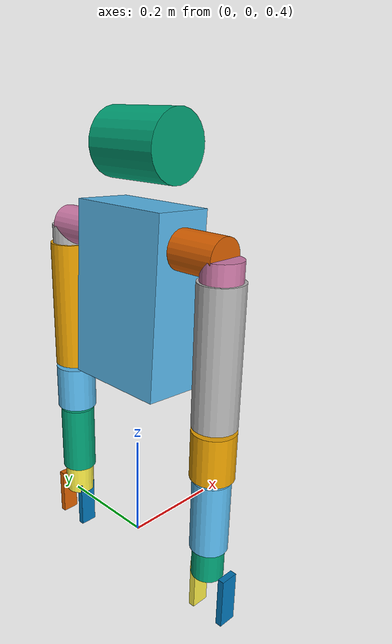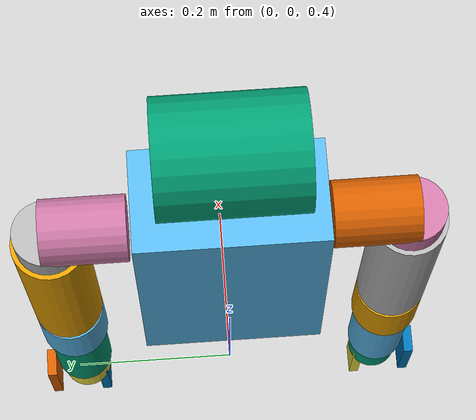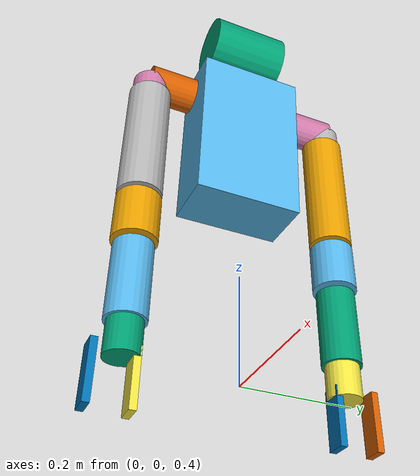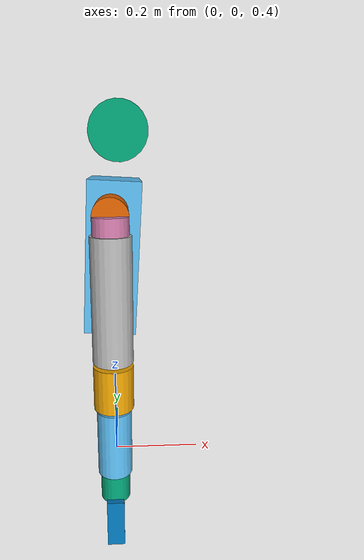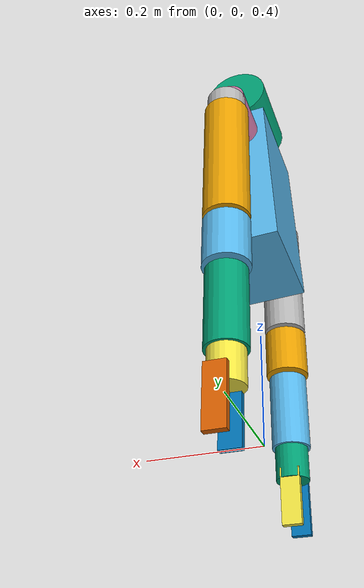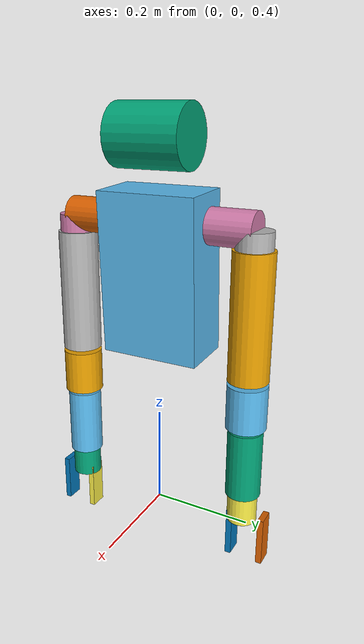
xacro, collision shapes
<?xml version="1.0"?>
<robot xmlns:xacro="http://www.ros.org/wiki/xacro" name="reachy">

<xacro:arg name="head" default="true"/>
<xacro:arg name="left_arm" default="true"/>
<xacro:arg name="right_arm" default="true"/>

<!-- Torso Link -->

<link name="pedestal"/>

<link name="torso">
    <inertial>
        <origin xyz="0.0 0.019 -0.009" rpy="0.0 0.0 0.0"/>
        <mass value="0.527"/>
        <inertia ixx="2.89598e-3" ixy="-1.16791e-6" ixz="-8.28749e-6" iyy="4.491e-3" iyz="2.343e-4" izz="3.995e-3"/>
    </inertial>
    <visual name="">
        <origin xyz="0.0 0.0 0.0" rpy="0.0 0.0 0.0"/>
        <geometry>
            <mesh filename="package://reachy_description/meshes/torso.dae"/>
        </geometry>
    </visual>
    <collision>
        <origin xyz="0 0 -0.1" rpy="0 0.05 0" />
        <geometry>
            <box size="0.11 0.2 0.32" />
        </geometry>
    </collision>
</link>

<!-- Head Links -->

<xacro:if value="$(arg head)">
<link name="head">
    <inertial>
        <origin xyz="-0.009 -0.002 0.059" rpy="0.0 0.0 0.0"/>
        <mass value="0.237"/>
        <inertia ixx="1.676e-3" ixy="3.068e-6" ixz="1.2449e-4" iyy="1.368e-3" iyz="3.360e-5" izz="8.425e-4"/>
    </inertial>
    <visual name="">
        <origin xyz="0.0 0.0 0.0" rpy="0.0 0.0 0.0"/>
        <geometry>
            <mesh filename="package://reachy_description/meshes/head.dae"/>
        </geometry>
    </visual>
    <collision>
        <origin xyz="-0.009 -0.002 0.059" rpy="1.57 0.0 0.0"/>
        <geometry>
            <cylinder length="0.15" radius="0.06" />
        </geometry>
    </collision>
</link>

<link name="l_antenna">
    <inertial>
        <origin xyz="-0.001 0.0 0.008" rpy="0.0 0.0 0.0"/>
        <mass value="0.004"/>
        <inertia ixx="1.794e-7" ixy="-1.240e-5" ixz="1.91701e-8" iyy="1.5e-7" iyz="3.169e-6" izz="1.933e-7"/>
    </inertial>
    <visual name="">
        <origin xyz="0.0 0.0 0.0" rpy="0.0 0.0 0.0"/>
        <geometry>
            <mesh filename="package://reachy_description/meshes/antenna.dae"/>
        </geometry>
    </visual>
    <collision>
        <origin xyz="0.1 0.0 0.1" rpy="0.0 0 0.0"/>
        <geometry>
            <cylinder length="0.0" radius="0.0" />
        </geometry>
    </collision>
</link>

<link name="r_antenna">
    <inertial>
        <origin xyz="-0.001 0.0 0.008" rpy="0.0 0.0 0.0"/>
        <mass value="0.004"/>
        <inertia ixx="1.794e-7" ixy="-1.240e-5" ixz="1.91701e-8" iyy="1.5e-7" iyz="3.169e-6" izz="1.933e-7"/>
    </inertial>
    <visual name="">
        <origin xyz="0.0 0.0 0.0" rpy="0.0 0.0 0.0"/>
        <geometry>
            <mesh filename="package://reachy_description/meshes/antenna.dae"/>
        </geometry>
    </visual>
    <collision>
        <origin xyz="0.0 0.0 0.0" rpy="0.0 0.0 0.0"/>
        <geometry>
            <cylinder length="0.0" radius="0.0" />
        </geometry>
    </collision>
</link>
</xacro:if>

<!-- Right Arm Links -->

<xacro:if value="$(arg right_arm)">
<link name="r_shoulder">
    <inertial>
        <origin xyz="-0.016 0.036 0.0" rpy="1.57 1.57 0.0"/>
        <mass value="0.053"/>
        <inertia ixx="3.308e-4" ixy="9.972e-8" ixz="-2.037e-9" iyy="4.650e-5" iyz="2.113e-6" izz="3.545e-5"/>
    </inertial>
    <visual name="">
        <origin xyz="0.0 0.04 0.0" rpy="1.57 1.57 0.0"/>
        <geometry>
            <mesh filename="package://reachy_description/meshes/shoulder.dae"/>
        </geometry>
    </visual>
    <collision>
        <origin xyz="0.0 0.04 0.0" rpy="1.57 1.57 0.0"/>
        <geometry>
            <cylinder length="0.09" radius="0.035" />
        </geometry>
    </collision>
</link>

<link name="r_shoulder_x">
    <inertial>
        <origin xyz="-0.0 0.0 -0.019" rpy="0.0 0.0 0.0"/>
        <mass value="0.158"/>
        <inertia ixx="6.887e+4" ixy="5.393e+0" ixz="-9.155e+2" iyy="7.895e+4" iyz="4.512e-1" izz="4.235e+4"/>
    </inertial>
    <visual name="">
        <origin xyz="0.0 0.0 0.0" rpy="0.0 0.0 0.0"/>
        <geometry>
            <mesh filename="package://reachy_description/meshes/shoulder_x.dae"/>
        </geometry>
    </visual>
    <collision>
        <origin xyz="0 0 -0.02" rpy="0.0 0.0 0.0"/>
        <geometry>
            <cylinder length="0.04" radius="0.035" />
        </geometry>
    </collision>
</link>

<link name="r_upper_arm">
    <inertial>
        <origin xyz="-0.004 0.0 -0.1426" rpy="0.0 0.0 0.0"/>
        <mass value="0.430"/>
        <inertia ixx="3.264e-3" ixy="-4.027e-8" ixz="1.395e-4" iyy="3.345e-3" iyz="1.885e-6" izz="2.616e-4"/>
    </inertial>
    <visual name="">
        <origin xyz="0.0 0.0 -0.0526" rpy="0.0 0.0 0.0"/>
        <geometry>
            <mesh filename="package://reachy_description/meshes/upper_arm.dae"/>
        </geometry>
    </visual>
    <collision>
        <origin xyz="0.0 0.0 -0.16" rpy="0.0 0.0 0.0"/>
        <geometry>
            <cylinder length="0.25" radius="0.04" />
        </geometry>
    </collision>
</link>

<link name="r_forearm">
    <inertial>
        <origin xyz="-0.008 0.0 -0.058" rpy="0.0 0.0 0.0"/>
        <mass value="0.162"/>
        <inertia ixx="2.532e-4" ixy="-2.999e-8" ixz="1.448e-5" iyy="2.538e-4" iyz="-4.323e-8" izz="1.234e-4"/>
    </inertial>
    <visual name="">
        <origin xyz="0.0 0.0 0.0" rpy="0.0 0.0 0.0"/>
        <geometry>
            <mesh filename="package://reachy_description/meshes/forearm.dae"/>
        </geometry>
    </visual>
    <collision>
        <origin xyz="0.0 0.0 -0.058" rpy="0.0 0.0 0.0"/>
        <geometry>
            <cylinder length="0.09" radius="0.04" />
        </geometry>
    </collision>
</link>

<link name="r_wrist">
    <inertial>
        <origin xyz="0.0 0.0 -0.193" rpy="0.0 0.0 0.0"/>
        <mass value="0.197"/>
        <inertia ixx="6.157e-4" ixy="5.706e-8" ixz="-1.045e-5" iyy="6.280e-4" iyz="4.862e-7" izz="1.050e-4"/>
    </inertial>
    <visual name="">
        <origin xyz="0.0 0.0 -0.100" rpy="0.0 0.0 0.0"/>
        <geometry>
            <mesh filename="package://reachy_description/meshes/wrist.dae"/>
        </geometry>
    </visual>
    <collision>
        <origin xyz="0.0 0.0 -0.18" rpy="0.0 0.0 0.0"/>
        <geometry>
            <cylinder length="0.14" radius="0.035" />
        </geometry>
    </collision>
</link>

<link name="r_wrist2hand">
    <inertial>
        <origin xyz="0.0 0.0 0.014" rpy="0.0 0.0 0.0"/>
        <mass value="0.01"/>
        <inertia ixx="6.750e-6" ixy="3.732e-11" ixz="-1.581e-11" iyy="6.060e-6" iyz="-1.746e-12" izz="5.774e-6"/>
    </inertial>
    <visual name="">
        <origin xyz="0.0 0.0 0.0" rpy="0.0 0.0 0.0"/>
        <geometry>
            <mesh filename="package://reachy_description/meshes/wrist2hand.dae"/>
        </geometry>
    </visual>
    <collision>
        <origin xyz="0.0 0.0 -0.03" rpy="0.0 0.0 0.0"/>
        <geometry>
            <cylinder length="0.06" radius="0.03" />
        </geometry>
    </collision>
</link>

<link name="r_gripper_thumb">
    <inertial>
        <origin xyz="0.032 -0.008 0.0" rpy="0.0 1.57 0.0"/>
        <mass value="0.173"/>
        <inertia ixx="1.083e-4" ixy="-3.476e-5" ixz="1.331e-6" iyy="1.421e-4" iyz="6.730e-7" izz="2.112e-4"/>
    </inertial>
    <visual name="">
        <origin xyz="0.0 0.0 0.0" rpy="0.0 1.57 0.0"/>
        <geometry>
            <mesh filename="package://reachy_description/meshes/r_gripper_thumb.dae"/>
        </geometry>
    </visual>
    <collision>
        <origin xyz="0.0 0.02 -0.06" rpy="0.0 1.57 0.0"/>
        <geometry>
            <box size="0.1 0.012 0.035" />
        </geometry>
    </collision>
</link>

<link name="r_gripper_finger">
    <inertial>
        <origin xyz="-0.005 -0.043 -0.0" rpy="0.0 1.57 0.0"/>
        <mass value="0.035"/>
        <inertia ixx="9.166e-5" ixy="-6.559e-6" ixz="-3.952e-8" iyy="1.062e-5" iyz="5.276e-9" izz="8.704e-5"/>
    </inertial>
    <visual name="">
        <origin xyz="0.0 0.0 0.0" rpy="0.0 1.57 0.0"/>
        <geometry>
            <mesh filename="package://reachy_description/meshes/r_gripper_finger.dae"/>
        </geometry>
    </visual>
    <collision>
        <origin xyz="0.0 -0.01 -0.02" rpy="0.0 1.57 0.0"/>
        <geometry>
            <box size="0.1 0.012 0.035" />
        </geometry>
    </collision>
</link>

<link name="right_tip"/>
</xacro:if>

<!-- Left Arm Links -->

<xacro:if value="$(arg left_arm)">
<link name="l_shoulder">
    <inertial>
        <origin xyz="-0.016 0.044 0.0" rpy="-1.57 1.57 0.0"/>
        <mass value="0.053"/>
        <inertia ixx="3.308e-4" ixy="9.972e-8" ixz="-2.037e-9" iyy="4.650e-5" iyz="2.113e-6" izz="3.545e-5"/>
    </inertial>
    <visual name="">
        <origin xyz="0.0 -0.04 0.0" rpy="-1.57 1.57 0.0"/>
        <geometry>
            <mesh filename="package://reachy_description/meshes/shoulder.dae"/>
        </geometry>
    </visual>
    <collision>
        <origin xyz="0.0 -0.04 0.0" rpy="-1.57 1.57 0.0"/>
        <geometry>
            <cylinder length="0.09" radius="0.035" />
        </geometry>
    </collision>
</link>

<link name="l_shoulder_x">
    <inertial>
        <origin xyz="0.0 0.0 -0.019" rpy="0.0 0.0 0.0"/>
        <mass value="0.158"/>
        <inertia ixx="6.887e+4" ixy="5.393e+0" ixz="-9.155e+2" iyy="7.895e+4" iyz="4.512e-1" izz="4.235e+4"/>
    </inertial>
    <visual name="">
        <origin xyz="0.0 0.0 0.0" rpy="0.0 0.0 0.0"/>
        <geometry>
            <mesh filename="package://reachy_description/meshes/shoulder_x.dae"/>
        </geometry>
    </visual>
    <collision>
        <origin xyz="0 0 -0.02" rpy="0.0 0.0 0.0"/>
        <geometry>
            <cylinder length="0.04" radius="0.035" />
        </geometry>
    </collision>
</link>

<link name="l_upper_arm">
    <inertial>
        <origin xyz="-0.004 0.0 -0.1426" rpy="0.0 0.0 0.0"/>
        <mass value="0.430"/>
        <inertia ixx="3.264e-3" ixy="-4.027e-8" ixz="1.395e-4" iyy="3.345e-3" iyz="1.885e-6" izz="2.616e-4"/>
    </inertial>
    <visual name="">
        <origin xyz="0.0 0.0 -0.0526" rpy="0.0 0.0 0.0"/>
        <geometry>
            <mesh filename="package://reachy_description/meshes/upper_arm.dae"/>
        </geometry>
    </visual>
    <collision>
        <origin xyz="0.0 0.0 -0.16" rpy="0.0 0.0 0.0"/>
        <geometry>
            <cylinder length="0.25" radius="0.04" />
        </geometry>
    </collision>
</link>

<link name="l_forearm">
    <inertial>
        <origin xyz="-0.008 0.0 -0.058" rpy="0.0 0.0 0.0"/>
        <mass value="0.162"/>
        <inertia ixx="2.532e-4" ixy="-2.999e-8" ixz="1.448e-5" iyy="2.538e-4" iyz="-4.323e-8" izz="1.234e-4"/>
    </inertial>
    <visual name="">
        <origin xyz="0.0 0.0 0.0" rpy="0.0 0.0 0.0"/>
        <geometry>
            <mesh filename="package://reachy_description/meshes/forearm.dae"/>
        </geometry>
    </visual>
    <collision>
        <origin xyz="0.0 0.0 -0.058" rpy="0.0 0.0 0.0"/>
        <geometry>
            <cylinder length="0.09" radius="0.04" />
        </geometry>
    </collision>
</link>

<link name="l_wrist">
    <inertial>
        <origin xyz="0.0 0.0 -0.193" rpy="0.0 0.0 0.0"/>
        <mass value="0.197"/>
        <inertia ixx="6.157e-4" ixy="5.706e-8" ixz="-1.045e-5" iyy="6.280e-4" iyz="4.862e-7" izz="1.050e-4"/>
    </inertial>
    <visual name="">
        <origin xyz="0.0 0.0 -0.1" rpy="0.0 0.0 0.0"/>
        <geometry>
            <mesh filename="package://reachy_description/meshes/wrist.dae"/>
        </geometry>
    </visual>
    <collision>
        <origin xyz="0.0 0.0 -0.18" rpy="0.0 0.0 0.0"/>
        <geometry>
            <cylinder length="0.14" radius="0.035" />
        </geometry>
    </collision>
</link>

<link name="l_wrist2hand">
    <inertial>
        <origin xyz="0.0 0.0 0.014" rpy="0.0 0.0 0.0"/>
        <mass value="0.01"/>
        <inertia ixx="6.750e-6" ixy="3.732e-11" ixz="-1.581e-11" iyy="6.060e-6" iyz="-1.746e-12" izz="5.774e-6"/>
    </inertial>
    <visual name="">
        <origin xyz="0.0 0.0 0.0" rpy="0.0 0.0 0.0"/>
        <geometry>
            <mesh filename="package://reachy_description/meshes/wrist2hand.dae"/>
        </geometry>
    </visual>
    <collision>
        <origin xyz="0.0 0.0 -0.03" rpy="0.0 0.0 0.0"/>
        <geometry>
            <cylinder length="0.06" radius="0.03" />
        </geometry>
    </collision>
</link>

<link name="l_gripper_thumb">
    <inertial>
        <origin xyz="0.032 0.008 0.0" rpy="0.0 1.57 0.0"/>
        <mass value="0.173"/>
        <inertia ixx="1.088e+5" ixy="3.479e+4" ixz="1.357e+3" iyy="1.422e+5" iyz="-7.930e+2" izz="2.116e+5"/>
    </inertial>
    <visual name="">
        <origin xyz="0.0 0.0 0.0" rpy="0.0 1.57 0.0"/>
        <geometry>
            <mesh filename="package://reachy_description/meshes/l_gripper_thumb.dae"/>
        </geometry>
    </visual>
    <collision>
        <origin xyz="0.0 -0.02 -0.06" rpy="0.0 1.57 0.0"/>
        <geometry>
            <box size="0.1 0.012 0.035" />
        </geometry>
    </collision>
</link>

<link name="l_gripper_finger">
    <inertial>
        <origin xyz="0.005 -0.043 0.0" rpy="0.0 1.57 0.0"/>
        <mass value="0.035"/>
        <inertia ixx="9.165e-5" ixy="6.559e-6" ixz="3.609e-10" iyy="1.062e-5" iyz="4.666e-9" izz="8.705e-5"/>
    </inertial>
    <visual name="">
        <origin xyz="0.0 0.0 0.0" rpy="0.0 1.57 0.0"/>
        <geometry>
            <mesh filename="package://reachy_description/meshes/l_gripper_finger.dae"/>
        </geometry>
    </visual>
    <collision>
        <origin xyz="0.0 0.01 -0.02" rpy="0.0 1.57 0.0"/>
        <geometry>
            <box size="0.1 0.012 0.035" />
        </geometry>
    </collision>
</link>

<link name="left_tip"/>
</xacro:if>

<!-- Head and Torso joints -->

<joint name="pedestal" type="fixed">
    <origin xyz="0 0 1" rpy="0 0 0" />
    <parent link="pedestal" />
    <child link="torso" />
</joint>

<xacro:if value="$(arg head)">
<joint name="r_antenna" type="revolute">
    <origin xyz="-0.052 -0.057 0.086" rpy="-0.166 -1.054 1.11"/>
    <parent link="head"/>
    <child link="r_antenna"/>
    <axis xyz="0 0 1"/>
   <limit lower="-2.618" upper="2.618" effort="10." velocity="0.0"/>
</joint>

<joint name="l_antenna" type="revolute">
    <origin xyz="-0.052 0.057 0.086" rpy="0.166 -1.054 -1.11"/>
    <parent link="head"/>
    <child link="l_antenna"/>
    <axis xyz="0 0 1"/>
   <limit lower="-2.618" upper="2.618" effort="10." velocity="0.0"/>
</joint>
</xacro:if>

<!-- Right Arm joint -->

<xacro:if value="$(arg right_arm)">
<joint name="r_shoulder_pitch" type="revolute">
    <origin xyz="0.0 -0.19 0.0" rpy="0.0 0.0 0.0"/>
    <parent link="torso"/>
    <child link="r_shoulder"/>
    <axis xyz="0 1 0"/>
   <limit lower="-2.618" upper="1.57" effort="10." velocity="0.0"/>
</joint>

<joint name="r_shoulder_roll" type="revolute">
    <origin xyz="0 0 0" rpy="0.0 0.0 0.0"/>
    <parent link="r_shoulder"/>
    <child link="r_shoulder_x"/>
    <axis xyz="1 0 0"/>
   <limit lower="-3.14" upper="0.174" effort="10." velocity="0.0"/>
</joint>

<joint name="r_arm_yaw" type="revolute">
    <origin xyz="0 0 0" rpy="0.0 0.0 0.0"/>
    <parent link="r_shoulder_x"/>
    <child link="r_upper_arm"/>
    <axis xyz="0 0 1"/>
   <limit lower="-1.57" upper="1.57" effort="10." velocity="0.0"/>
</joint>

<joint name="r_elbow_pitch" type="revolute">
    <origin xyz="0 0 -0.28" rpy="0.0 0.0 0.0"/>
    <parent link="r_upper_arm"/>
    <child link="r_forearm"/>
    <axis xyz="0 1 0"/>
   <limit lower="-2.182" upper="0" effort="10." velocity="0.0"/>
</joint>

<joint name="r_forearm_yaw" type="revolute">
    <origin xyz="0 0 0" rpy="0.0 0.0 0.0"/>
    <parent link="r_forearm"/>
    <child link="r_wrist"/>
    <axis xyz="0 0 1"/>
   <limit lower="-1.745" upper="1.745" effort="10." velocity="0.0"/>
</joint>

<joint name="r_wrist_pitch" type="revolute">
    <origin xyz="0 0 -0.25" rpy="0.0 0.0 0.0"/>
    <parent link="r_wrist"/>
    <child link="r_wrist2hand"/>
    <axis xyz="0 1 0"/>
   <limit lower="-0.785" upper="0.785" effort="10." velocity="0.0"/>
</joint>

<joint name="r_wrist_roll" type="revolute">
    <origin xyz="0 0 -0.0325" rpy="0.0 0.0 0.0"/>
    <parent link="r_wrist2hand"/>
    <child link="r_gripper_thumb"/>
    <axis xyz="1 0 0"/>
   <limit lower="-0.785" upper="0.785" effort="10." velocity="0.0"/>
</joint>

<joint name="r_gripper" type="revolute">
    <origin xyz="0.0 -0.037 -0.03998" rpy="0.0 0.0 0.0"/>
    <parent link="r_gripper_thumb"/>
    <child link="r_gripper_finger"/>
    <axis xyz="1 0 0"/>
   <limit lower="-1.2" upper="0.35" effort="10." velocity="0.0"/>
</joint>

<joint name="r_tip" type="fixed">
    <origin xyz="0 -0.012 -0.085" rpy="0 0 0" />
    <parent link="r_gripper_thumb" />
    <child link="right_tip" />
</joint>
</xacro:if>

<!-- Left arm joints -->
<xacro:if value="$(arg left_arm)">
<joint name="l_shoulder_pitch" type="revolute">
    <origin xyz="0.0 0.19 0.0" rpy="0.0 0.0 0.0"/>
    <parent link="torso"/>
    <child link="l_shoulder"/>
    <axis xyz="0 1 0"/>
   <limit lower="-2.618" upper="1.57" effort="10." velocity="0.0"/>
</joint>

<joint name="l_shoulder_roll" type="revolute">
    <origin xyz="0 0 0" rpy="0.0 0.0 0.0"/>
    <parent link="l_shoulder"/>
    <child link="l_shoulder_x"/>
    <axis xyz="1 0 0"/>
   <limit lower="-0.174" upper="3.14" effort="10." velocity="0.0"/>
</joint>

<joint name="l_arm_yaw" type="revolute">
    <origin xyz="0 0 0" rpy="0.0 0.0 0.0"/>
    <parent link="l_shoulder_x"/>
    <child link="l_upper_arm"/>
    <axis xyz="0 0 1"/>
   <limit lower="-1.57" upper="1.57" effort="10." velocity="0.0"/>
</joint>

<joint name="l_elbow_pitch" type="revolute">
    <origin xyz="0 0 -0.28" rpy="0.0 0.0 0.0"/>
    <parent link="l_upper_arm"/>
    <child link="l_forearm"/>
    <axis xyz="0 1 0"/>
   <limit lower="-2.182" upper="0" effort="10." velocity="0.0"/>
</joint>

<joint name="l_forearm_yaw" type="revolute">
    <origin xyz="0 0 0" rpy="0.0 0.0 0.0"/>
    <parent link="l_forearm"/>
    <child link="l_wrist"/>
    <axis xyz="0 0 1"/>
   <limit lower="-1.745" upper="1.745" effort="10." velocity="0.0"/>
</joint>

<joint name="l_wrist_pitch" type="revolute">
    <origin xyz="0 0 -0.25" rpy="0.0 0.0 0.0"/>
    <parent link="l_wrist"/>
    <child link="l_wrist2hand"/>
    <axis xyz="0 1 0"/>
   <limit lower="-0.785" upper="0.785" effort="10." velocity="0.0"/>
</joint>

<joint name="l_wrist_roll" type="revolute">
    <origin xyz="0 0 -0.0325" rpy="0.0 0.0 0.0"/>
    <parent link="l_wrist2hand"/>
    <child link="l_gripper_thumb"/>
    <axis xyz="1 0 0"/>
   <limit lower="-0.785" upper="0.785" effort="10." velocity="0.0"/>
</joint>

<joint name="l_gripper" type="revolute">
    <origin xyz="0.0 0.037 -0.03998" rpy="0.0 0.0 0.0"/>
    <parent link="l_gripper_thumb"/>
    <child link="l_gripper_finger"/>
    <axis xyz="1 0 0"/>
   <limit lower="-0.35" upper="1.2" effort="10." velocity="0.0"/>
</joint>

<joint name="l_tip" type="fixed">
    <origin xyz="0 0.012 -0.085" rpy="0 0 0" />
    <parent link="l_gripper_thumb" />
    <child link="left_tip" />
</joint>
</xacro:if>

<!-- Head joint... -->

<!-- ...with a fixed joint -->

<!-- ...with a ball orbita joint -->
<xacro:if value="$(arg head)">
<joint name="orbita_roll" type="revolute">
    <origin xyz="0.015 0.0 0.095" rpy="0 0.174 0" />
    <parent link="torso"/>
    <child link="head_x"/>
    <axis xyz="1 0 0"/>
   <limit lower="-0.8" upper="0.8" effort="10." velocity="0.0"/>
</joint>

<link name="head_x" />

<joint name="orbita_pitch" type="revolute">
    <origin xyz="0 0 0" rpy="0.0 0.0 0.0"/>
    <parent link="head_x"/>
    <child link="head_y"/>
    <axis xyz="0 1 0"/>
   <limit lower="-0.8" upper="1.13" effort="10." velocity="0.0"/>
</joint>

<link name="head_y" />

<joint name="orbita_yaw" type="revolute">
    <origin xyz="0 0 0" rpy="0.0 0.0 0.0"/>
    <parent link="head_y"/>
    <child link="head_z"/>
    <axis xyz="0 0 1"/>
   <limit lower="-2.79" upper="2.79" effort="10." velocity="0.0"/>
</joint>

<link name="head_z" />

<joint name="orbita_fixed" type="fixed">
    <origin xyz="0 0 0" rpy="0.0 0.0 0.0"/>
    <parent link="head_z" />
    <child link="head" />
</joint>

<!-- Fixed Orbita Arms Visuals -->

<joint name="orbita_top" type="fixed">
    <origin xyz="0.0067 0.0 0.0478" rpy="0 0.174 0"/>
    <parent link="torso"/>
    <child link="top_orbita_arm"/>
</joint>

<link name="top_orbita_arm">
    <visual name="">
        <origin xyz="0.0 0.0 0.0" rpy="0.0 0.0 0.5236"/>
        <geometry>
            <mesh filename="package://reachy_description/meshes/orbita_arm.dae"/>
        </geometry>
    </visual>
    <collision>
        <origin xyz="0.0 0.0 0.0" rpy="0.0 0.0 0.0"/>
        <geometry>
            <cylinder length="0.0" radius="0.0" />
        </geometry>
    </collision>
</link>

<joint name="orbita_middle" type="fixed">
    <origin xyz="0.0067 0.0 0.0478" rpy="0 0.174 0"/>
    <parent link="torso"/>
    <child link="middle_orbita_arm"/>
</joint>

<link name="middle_orbita_arm">
    <visual name="">
        <origin xyz="0.0 0.0 0.0" rpy="0.0 0.0 2.618"/>
        <geometry>
            <mesh filename="package://reachy_description/meshes/orbita_arm.dae"/>
        </geometry>
    </visual>
    <collision>
        <origin xyz="0.0 0.0 0.0" rpy="0.0 0.0 0.0"/>
        <geometry>
            <cylinder length="0.0" radius="0.0" />
        </geometry>
    </collision>
</link>

<joint name="orbita_bottom" type="fixed">
    <origin xyz="0.0067 0.0 0.0478" rpy="0 0.174 0"/>
    <parent link="torso"/>
    <child link="bottom_orbita_arm"/>
</joint>

<link name="bottom_orbita_arm">
    <visual name="">
        <origin xyz="0.0 0.0 0.0" rpy="0.0 0.0 -1.57"/>
        <geometry>
            <mesh filename="package://reachy_description/meshes/orbita_arm.dae"/>
        </geometry>
    </visual>
    <collision>
        <origin xyz="0.0 0.0 0.0" rpy="0.0 0.0 0.0"/>
        <geometry>
            <cylinder length="0.0" radius="0.0" />
        </geometry>
    </collision>
</link>
</xacro:if>

<!-- Cameras -->
<xacro:if value="$(arg head)">
<joint name="left_cam_fixed" type="fixed">
    <origin xyz="0.0033 0.03625 0.061" rpy="0.0 0.0 0.0"/>
    <parent link="head" />
    <child link="left_camera" />
</joint>

<link name="left_camera" />

<joint name="right_cam_fixed" type="fixed">
    <origin xyz="0.0033 -0.03625 0.061" rpy="0.0 0.0 0.0"/>
    <parent link="head" />
    <child link="right_camera" />
</joint>

<link name="right_camera" />
</xacro:if>

</robot>
